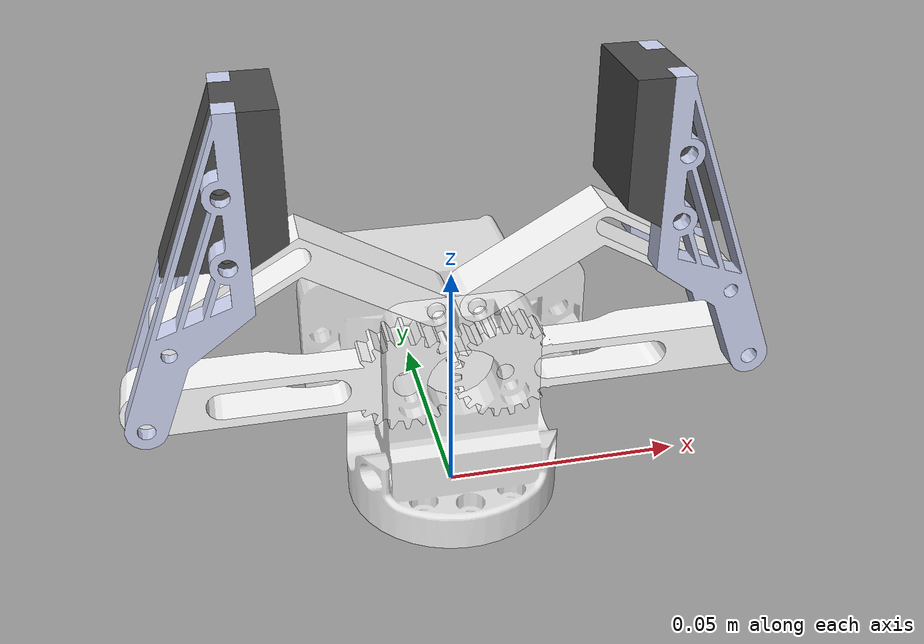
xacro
<?xml version="1.0" encoding="utf-8"?>
<robot xmlns:xacro="http://www.ros.org/wiki/xacro" name="gripper">

  <xacro:macro name="mimic_joint_plugin_gazebo" params="name_prefix parent_joint mimic_joint has_pid:=false multiplier:=1.0 offset:=0 sensitiveness:=0.0 max_effort:=1.0 robot_namespace:=''">
    <gazebo>
      <plugin name="${name_prefix}mimic_joint_plugin" filename="libroboticsgroup_gazebo_mimic_joint_plugin.so">
        <joint>${parent_joint}</joint>
        <mimicJoint>${mimic_joint}</mimicJoint>
        <xacro:if value="${has_pid}">                     <!-- if set to true, PID parameters from "/gazebo_ros_control/pid_gains/${mimic_joint}" are loaded -->
          <hasPID />
        </xacro:if>
        <multiplier>${multiplier}</multiplier>
        <offset>${offset}</offset>
        <sensitiveness>${sensitiveness}</sensitiveness>   <!-- if absolute difference between setpoint and process value is below this threshold, do nothing; 0.0 = disable [rad] -->
        <maxEffort>${max_effort}</maxEffort>              <!-- only taken into account if has_pid:=true [Nm] -->
        <xacro:unless value="${robot_namespace == ''}">
          <robotNamespace>${robot_namespace}</robotNamespace>
        </xacro:unless>
      </plugin>
    </gazebo>
  </xacro:macro>

  <link
    name="mount_link">
    <inertial>
      <origin
        xyz="-7.69604728464136E-05 0.0135902117365988 0.0250753455696242"
        rpy="0 0 0" />
      <mass
        value="0.0572428949081024" />
      <inertia
        ixx="1.08739624685948E-05"
        ixy="-5.67703825246591E-08"
        ixz="-4.79892598221548E-12"
        iyy="1.32071568573059E-05"
        iyz="-2.91877769990152E-07"
        izz="1.6026956946386E-05" />
    </inertial>
    <visual>
      <origin
        xyz="0 0 0"
        rpy="0 0 0" />
      <geometry>
        <mesh
          filename="package://gripper/meshes/mount_link.STL" />
      </geometry>
      <material
        name="">
        <color
          rgba="1 1 1 0.8" />
      </material>
    </visual>
    <collision>
      <origin
        xyz="0 0 0"
        rpy="0 0 0" />
      <geometry>
        <mesh
          filename="package://gripper/meshes/mount_link.STL" />
      </geometry>
    </collision>
  </link>
  <link
    name="link_1_left">
    <inertial>
      <origin
        xyz="0.0201642304338692 1.38777878078145E-17 0.004236242137124"
        rpy="0 0 0" />
      <mass
        value="0.00469706452647219" />
      <inertia
        ixx="1.18042272673537E-07"
        ixy="2.48380401664581E-22"
        ixz="-6.12806042251421E-08"
        iyy="2.05310941947316E-06"
        iyz="-2.74480147325617E-24"
        izz="2.10931388717727E-06" />
    </inertial>
    <visual>
      <origin
        xyz="0 0 0"
        rpy="0 0 0" />
      <geometry>
        <mesh
          filename="package://gripper/meshes/link_1_left.STL" />
      </geometry>
      <material
        name="">
        <color
          rgba="1 1 1 1" />
      </material>
    </visual>
    <collision>
      <origin
        xyz="0 0 0"
        rpy="0 0 0" />
      <geometry>
        <mesh
          filename="package://gripper/meshes/link_1_left.STL" />
      </geometry>
    </collision>
  </link>
  <joint
    name="joint_1_left"
    type="revolute">
    <origin
      xyz="-0.01 -0.005 0.02925"
      rpy="1.5708 0 3.1416" />
    <parent
      link="mount_link" />
    <child
      link="link_1_left" />
    <axis
      xyz="0 0 -1" />
    <limit
      lower="-3.14"
      upper="3.14"
      effort="1"
      velocity="1" />
    <dynamics
      damping="1"
      friction="1" />
    <mimic
      joint="joint_1_right"
      multiplier="-1"
      offset="0" />
  </joint>
  <link
    name="link_2_left">
    <inertial>
      <origin
        xyz="-0.0118635948259238 0.0260158233367256 -9.35122738154528E-05"
        rpy="0 0 0" />
      <mass
        value="0.00437161591060403" />
      <inertia
        ixx="1.26241086249325E-06"
        ixy="4.50233056113258E-07"
        ixz="1.03279945421963E-09"
        iyy="2.54614187804496E-07"
        iyz="-1.94371719517842E-09"
        izz="1.49861390642806E-06" />
    </inertial>
    <visual>
      <origin
        xyz="0 0 0"
        rpy="0 0 0" />
      <geometry>
        <mesh
          filename="package://gripper/meshes/link_2_left.STL" />
      </geometry>
      <material
        name="">
        <color
          rgba="0.792156862745098 0.819607843137255 0.933333333333333 1" />
      </material>
    </visual>
    <collision>
      <origin
        xyz="0 0 0"
        rpy="0 0 0" />
      <geometry>
        <mesh
          filename="package://gripper/meshes/link_2_left.STL" />
      </geometry>
    </collision>
  </link>
  <joint
    name="joint_2_left"
    type="revolute">
    <origin
      xyz="0.05 0 0.005"
      rpy="0 0 0" />
    <parent
      link="link_1_left" />
    <child
      link="link_2_left" />
    <axis
      xyz="0 0 1" />
    <limit
      lower="-3.14"
      upper="3.14"
      effort="1"
      velocity="1" />
    <dynamics
      damping="1"
      friction="1" />
    <mimic
      joint="joint_1_left"
      multiplier="1"
      offset="0" />
  </joint>
  <link
    name="link_3_left">
    <inertial>
      <origin
        xyz="-0.00764323689249072 6.15392821018979E-19 -0.0158438878575795"
        rpy="0 0 0" />
      <mass
        value="0.00676809927823876" />
      <inertia
        ixx="6.50800323977911E-07"
        ixy="-2.76588985914095E-23"
        ixz="-1.32178480768053E-07"
        iyy="7.0118965410435E-07"
        iyz="-3.28680901965363E-23"
        izz="3.53298937602956E-07" />
    </inertial>
    <visual>
      <origin
        xyz="0 0 0"
        rpy="0 0 0" />
      <geometry>
        <mesh
          filename="package://gripper/meshes/link_3_left.STL" />
      </geometry>
      <material
        name="">
        <color
          rgba="0.298039215686275 0.298039215686275 0.298039215686275 1" />
      </material>
    </visual>
    <collision>
      <origin
        xyz="0 0 0"
        rpy="0 0 0" />
      <geometry>
        <mesh
          filename="package://gripper/meshes/link_3_left.STL" />
      </geometry>
    </collision>
  </link>
  <joint
    name="joint_3_left"
    type="fixed">
    <origin
      xyz="-0.029 0.061 0"
      rpy="1.5708 0 3.1416" />
    <parent
      link="link_2_left" />
    <child
      link="link_3_left" />
    <axis
      xyz="0 0 0" />
    <limit
      lower="-3.14"
      effort="1"
      velocity="1" />
  </joint>
  <link
    name="link_support_left">
    <inertial>
      <origin
        xyz="-0.0230443185065054 -1.92516886232946E-18 -0.00617590354942425"
        rpy="0 0 0" />
      <mass
        value="0.00343879121636352" />
      <inertia
        ixx="3.3013163060583E-07"
        ixy="-4.9675081730519E-23"
        ixz="-3.63783392132806E-07"
        iyy="9.95820730062242E-07"
        iyz="1.93019503238979E-23"
        izz="7.23002286395804E-07" />
    </inertial>
    <visual>
      <origin
        xyz="0 0 0"
        rpy="0 0 0" />
      <geometry>
        <mesh
          filename="package://gripper/meshes/link_support_left.STL" />
      </geometry>
      <material
        name="">
        <color
          rgba="1 1 1 1" />
      </material>
    </visual>
    <collision>
      <origin
        xyz="0 0 0"
        rpy="0 0 0" />
      <geometry>
        <mesh
          filename="package://gripper/meshes/link_support_left.STL" />
      </geometry>
    </collision>
  </link>
  <joint
    name="joint_support_left"
    type="revolute">
    <origin
      xyz="-0.004 0 0.04525"
      rpy="0 0.5236 0" />
    <parent
      link="mount_link" />
    <child
      link="link_support_left" />
    <axis
      xyz="0 1 0" />
    <limit
      lower="-3.14"
      upper="3.14"
      effort="1"
      velocity="1" />
    <dynamics
      damping="1"
      friction="1" />
    <mimic
      joint="joint_1_left"
      multiplier="-1"
      offset="0" />
  </joint>
  <link
    name="link_1_right">
    <inertial>
      <origin
        xyz="0.0216856425487956 -3.46944695195361E-18 0.000708029008234877"
        rpy="0 0 0" />
      <mass
        value="0.00477903641271765" />
      <inertia
        ixx="1.1732564402647E-07"
        ixy="-1.80664133980049E-23"
        ixz="6.51369632433988E-08"
        iyy="2.08980923685234E-06"
        iyz="-1.49480652486311E-23"
        izz="2.14169254123333E-06" />
    </inertial>
    <visual>
      <origin
        xyz="0 0 0"
        rpy="0 0 0" />
      <geometry>
        <mesh
          filename="package://gripper/meshes/link_1_right.STL" />
      </geometry>
      <material
        name="">
        <color
          rgba="1 1 1 1" />
      </material>
    </visual>
    <collision>
      <origin
        xyz="0 0 0"
        rpy="0 0 0" />
      <geometry>
        <mesh
          filename="package://gripper/meshes/link_1_right.STL" />
      </geometry>
    </collision>
  </link>
  <joint
    name="joint_1_right"
    type="revolute">
    <origin
      xyz="0.01 0 0.02925"
      rpy="1.5708 0 0" />
    <parent
      link="mount_link" />
    <child
      link="link_1_right" />
    <axis
      xyz="0 0 1" />
    <limit
      lower="0"
      upper="1.05"
      effort="1"
      velocity="1" />
    <dynamics
      damping="1"
      friction="1" />
  </joint>
  <link
    name="link_2_right">
    <inertial>
      <origin
        xyz="-0.0118635948259238 0.0260158233367256 9.35122738154512E-05"
        rpy="0 0 0" />
      <mass
        value="0.00437161591060403" />
      <inertia
        ixx="1.26241086249325E-06"
        ixy="4.50233056113258E-07"
        ixz="-1.03279945421962E-09"
        iyy="2.54614187804496E-07"
        iyz="1.9437171951784E-09"
        izz="1.49861390642806E-06" />
    </inertial>
    <visual>
      <origin
        xyz="0 0 0"
        rpy="0 0 0" />
      <geometry>
        <mesh
          filename="package://gripper/meshes/link_2_right.STL" />
      </geometry>
      <material
        name="">
        <color
          rgba="0.792156862745098 0.819607843137255 0.933333333333333 1" />
      </material>
    </visual>
    <collision>
      <origin
        xyz="0 0 0"
        rpy="0 0 0" />
      <geometry>
        <mesh
          filename="package://gripper/meshes/link_2_right.STL" />
      </geometry>
    </collision>
  </link>
  <joint
    name="joint_2_right"
    type="revolute">
    <origin
      xyz="0.05 0 0"
      rpy="0 0 0" />
    <parent
      link="link_1_right" />
    <child
      link="link_2_right" />
    <axis
      xyz="0 0 -1" />
    <limit
      lower="-3.14"
      upper="3.14"
      effort="1"
      velocity="1" />
    <dynamics
      damping="1"
      friction="1" />
    <mimic
      joint="joint_1_right"
      multiplier="1"
      offset="0" />
  </joint>
  <link
    name="link_3_right">
    <inertial>
      <origin
        xyz="0.00764323689249072 -6.70481136450209E-19 -0.0158438878575795"
        rpy="0 0 0" />
      <mass
        value="0.00676809927823876" />
      <inertia
        ixx="6.50800323977911E-07"
        ixy="-3.90699123108268E-23"
        ixz="1.32178480768053E-07"
        iyy="7.0118965410435E-07"
        iyz="-1.94350230005656E-23"
        izz="3.53298937602955E-07" />
    </inertial>
    <visual>
      <origin
        xyz="0 0 0"
        rpy="0 0 0" />
      <geometry>
        <mesh
          filename="package://gripper/meshes/link_3_right.STL" />
      </geometry>
      <material
        name="">
        <color
          rgba="0.298039215686275 0.298039215686275 0.298039215686275 1" />
      </material>
    </visual>
    <collision>
      <origin
        xyz="0 0 0"
        rpy="0 0 0" />
      <geometry>
        <mesh
          filename="package://gripper/meshes/link_3_right.STL" />
      </geometry>
    </collision>
  </link>
  <joint
    name="joint_3_right"
    type="fixed">
    <origin
      xyz="-0.029 0.061 0"
      rpy="-1.5708 0 0" />
    <parent
      link="link_2_right" />
    <child
      link="link_3_right" />
    <axis
      xyz="0 0 0" />
  </joint>
  <link
    name="link_support_right">
    <inertial>
      <origin
        xyz="-0.0230443185065054 2.00458308010044E-18 -0.00617590354942422"
        rpy="0 0 0" />
      <mass
        value="0.00343879121636352" />
      <inertia
        ixx="3.3013163060583E-07"
        ixy="1.63567262663565E-23"
        ixz="-3.63783392132805E-07"
        iyy="9.95820730062241E-07"
        iyz="2.40140706788198E-23"
        izz="7.23002286395803E-07" />
    </inertial>
    <visual>
      <origin
        xyz="0 0 0"
        rpy="0 0 0" />
      <geometry>
        <mesh
          filename="package://gripper/meshes/link_support_right.STL" />
      </geometry>
      <material
        name="">
        <color
          rgba="1 1 1 1" />
      </material>
    </visual>
    <collision>
      <origin
        xyz="0 0 0"
        rpy="0 0 0" />
      <geometry>
        <mesh
          filename="package://gripper/meshes/link_support_right.STL" />
      </geometry>
    </collision>
  </link>
  <joint
    name="joint_support_right"
    type="revolute">
    <origin
      xyz="0.004 0 0.04525"
      rpy="0 0.5236 -3.1416" />
    <parent
      link="mount_link" />
    <child
      link="link_support_right" />
    <axis
      xyz="0 1 0" />
    <limit
      lower="-3.14"
      upper="3.14"
      effort="1"
      velocity="1" />
    <dynamics
      damping="1"
      friction="1" />
    <mimic
      joint="joint_1_right"
      multiplier="1"
      offset="0" />
  </joint>

  <transmission name="trans_joint_1_left">
    <type>transmission_interface/SimpleTransmission</type>
    <joint name="joint_1_left">
      <hardwareInterface>hardware_interface/PositionJointInterface</hardwareInterface>
    </joint>
    <actuator name="joint_1_left_motor">
      <hardwareInterface>hardware_interface/PositionJointInterface</hardwareInterface>
      <mechanicalReduction>1</mechanicalReduction>
    </actuator>
  </transmission>
  <transmission name="trans_joint_2_left">
    <type>transmission_interface/SimpleTransmission</type>
    <joint name="joint_2_left">
      <hardwareInterface>hardware_interface/PositionJointInterface</hardwareInterface>
    </joint>
    <actuator name="joint_2_left_motor">
      <hardwareInterface>hardware_interface/PositionJointInterface</hardwareInterface>
      <mechanicalReduction>1</mechanicalReduction>
    </actuator>
  </transmission>
  <transmission name="trans_joint_support_left">
    <type>transmission_interface/SimpleTransmission</type>
    <joint name="joint_support_left">
      <hardwareInterface>hardware_interface/PositionJointInterface</hardwareInterface>
    </joint>
    <actuator name="joint_support_left_motor">
      <hardwareInterface>hardware_interface/PositionJointInterface</hardwareInterface>
      <mechanicalReduction>1</mechanicalReduction>
    </actuator>
  </transmission>

  <transmission name="trans_joint_1_right">
    <type>transmission_interface/SimpleTransmission</type>
    <joint name="joint_1_right">
      <hardwareInterface>hardware_interface/PositionJointInterface</hardwareInterface>
    </joint>
    <actuator name="joint_1_right_motor">
      <hardwareInterface>hardware_interface/PositionJointInterface</hardwareInterface>
      <mechanicalReduction>1</mechanicalReduction>
    </actuator>
  </transmission>

  <transmission name="trans_joint_2_right">
    <type>transmission_interface/SimpleTransmission</type>
    <joint name="joint_2_right">
      <hardwareInterface>hardware_interface/PositionJointInterface</hardwareInterface>
    </joint>
    <actuator name="joint_2_right_motor">
      <hardwareInterface>hardware_interface/PositionJointInterface</hardwareInterface>
      <mechanicalReduction>1</mechanicalReduction>
    </actuator>
  </transmission>
  <transmission name="trans_joint_support_right">
    <type>transmission_interface/SimpleTransmission</type>
    <joint name="joint_support_right">
      <hardwareInterface>hardware_interface/PositionJointInterface</hardwareInterface>
    </joint>
    <actuator name="joint_support_right_motor">
      <hardwareInterface>hardware_interface/PositionJointInterface</hardwareInterface>
      <mechanicalReduction>1</mechanicalReduction>
    </actuator>
  </transmission>

  <gazebo>
    <plugin name="control" filename="libgazebo_ros_control.so">
    </plugin>
  </gazebo>

  <gazebo>
    <plugin name="joint_state_publisher" filename="libgazebo_ros_joint_state_publisher.so">
      <jointName>joint_1_left, joint_2_left, joint_support_left, joint_1_right, joint_2_right,
        joint_support_right</jointName>
    </plugin>
  </gazebo>

</robot>
